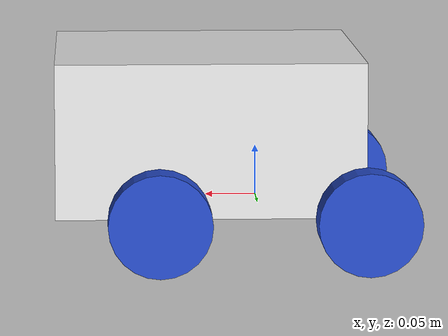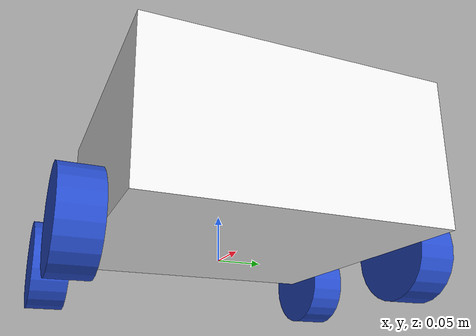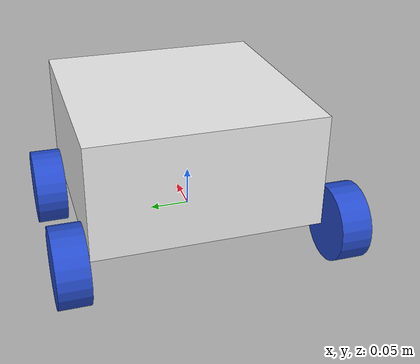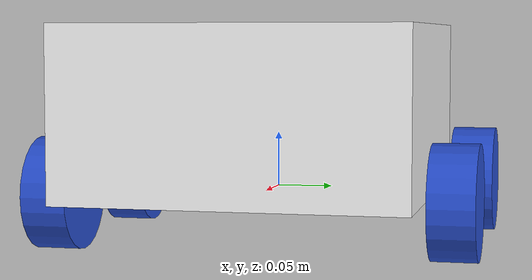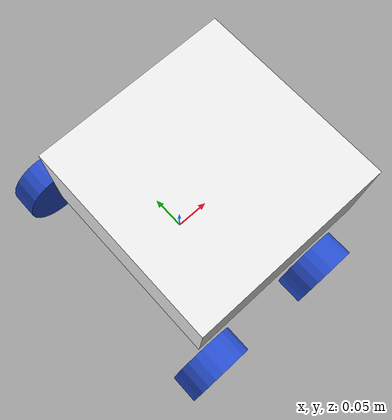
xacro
<?xml version="1.0"?>
<robot xmlns:xacro="http://www.ros.org/wiki/xacro" >

<!-- BASE LINK -->
<link name="base_link">
</link>

  <!-- BASE_FOOTPRINT LINK -->

    <joint name="base_footprint_joint" type="fixed">
        <parent link="base_link"/>
        <child link="base_footprint"/>
        <origin xyz="0 0 0" rpy="0 0 0"/>
    </joint>

    <link name="base_footprint">
    </link>

<!-- CHASSIS LINK -->
<joint name="chassis_joint" type="fixed">
    <parent link="base_link"/>
    <child link="chassis"/>
    <origin xyz="-0.1 0 0"/>
</joint>

<link name="chassis">
    <visual>
        <origin xyz="0.15 0 0.075"/>
        <geometry>
            <box size="0.3 0.3 0.15"/>
        </geometry>
        <material name="white"/>
    </visual>
    <collision>
        <origin xyz="0.15 0 0.075"/>
        <geometry>
            <box size="0.3 0.3 0.15"/>
        </geometry>
    </collision>
    <xacro:inertial_box mass="0.5" x="0.3" y="0.3" z="0.15">
        <origin xyz="0.15 0 0.075" rpy="0 0 0"/>
    </xacro:inertial_box>
</link>

<gazebo reference="chassis">
    <material>Gazebo/White</material>
</gazebo>

<!-- FRONT LEFT WHEEL LINK -->
<joint name="front_left_wheel_joint" type="continuous">
    <parent link="base_link"/>
    <child link="front_left_wheel"/>
    <origin xyz="0.1 0.175 0" rpy="-${pi/2} 0 0" />
    <axis xyz="0 0 1"/>
</joint>

<link name="front_left_wheel">
    <visual>
        <geometry>
            <cylinder radius="0.05" length="0.04"/>
        </geometry>
        <material name="blue"/>
    </visual>
    <collision>
        <geometry>
            <cylinder radius="0.05" length="0.04"/>
        </geometry>
    </collision>
    <xacro:inertial_cylinder mass="0.1" length="0.04" radius="0.05">
        <origin xyz="0 0 0" rpy="0 0 0"/>
    </xacro:inertial_cylinder>
</link>

<gazebo reference="front_left_wheel">
    <material>Gazebo/Blue</material>
</gazebo>

<!-- FRONT RIGHT WHEEL LINK -->
<joint name="front_right_wheel_joint" type="continuous">
    <parent link="base_link"/>
    <child link="front_right_wheel"/>
    <origin xyz="0.1 -0.175 0" rpy="${pi/2} 0 0" />
    <axis xyz="0 0 -1"/>
</joint>

<link name="front_right_wheel">
    <visual>
        <geometry>
            <cylinder radius="0.05" length="0.04"/>
        </geometry>
        <material name="blue"/>
    </visual>
    <collision>
        <geometry>
            <cylinder radius="0.05" length="0.04"/>
        </geometry>
    </collision>
    <xacro:inertial_cylinder mass="0.1" length="0.04" radius="0.05">
        <origin xyz="0 0 0" rpy="0 0 0"/>
    </xacro:inertial_cylinder>
</link>

<gazebo reference="front_right_wheel">
    <material>Gazebo/Blue</material>
</gazebo>

<!-- REAR LEFT WHEEL LINK -->
<joint name="rear_left_wheel_joint" type="continuous">
    <parent link="base_link"/>
    <child link="rear_left_wheel"/>
    <origin xyz="-0.1 0.175 0" rpy="-${pi/2} 0 0" />
    <axis xyz="0 0 1"/>
</joint>

<link name="rear_left_wheel">
    <visual>
        <geometry>
            <cylinder radius="0.05" length="0.04"/>
        </geometry>
        <material name="blue"/>
    </visual>
    <collision>
        <geometry>
            <cylinder radius="0.05" length="0.04"/>
        </geometry>
    </collision>
    <xacro:inertial_cylinder mass="0.1" length="0.04" radius="0.05">
        <origin xyz="0 0 0" rpy="0 0 0"/>
    </xacro:inertial_cylinder>
</link>

<gazebo reference="rear_left_wheel">
    <material>Gazebo/Blue</material>
</gazebo>

<!-- REAR RIGHT WHEEL LINK -->
<joint name="rear_right_wheel_joint" type="continuous">
    <parent link="base_link"/>
    <child link="rear_right_wheel"/>
    <origin xyz="-0.1 -0.175 0" rpy="${pi/2} 0 0" />
    <axis xyz="0 0 -1"/>
</joint>

<link name="rear_right_wheel">
    <visual>
        <geometry>
            <cylinder radius="0.05" length="0.04"/>
        </geometry>
        <material name="blue"/>
    </visual>
    <collision>
        <geometry>
            <cylinder radius="0.05" length="0.04"/>
        </geometry>
    </collision>
    <xacro:inertial_cylinder mass="0.1" length="0.04" radius="0.05">
        <origin xyz="0 0 0" rpy="0 0 0"/>
    </xacro:inertial_cylinder>
</link>

<gazebo reference="rear_right_wheel">
    <material>Gazebo/Blue</material>
</gazebo>

</robot>
